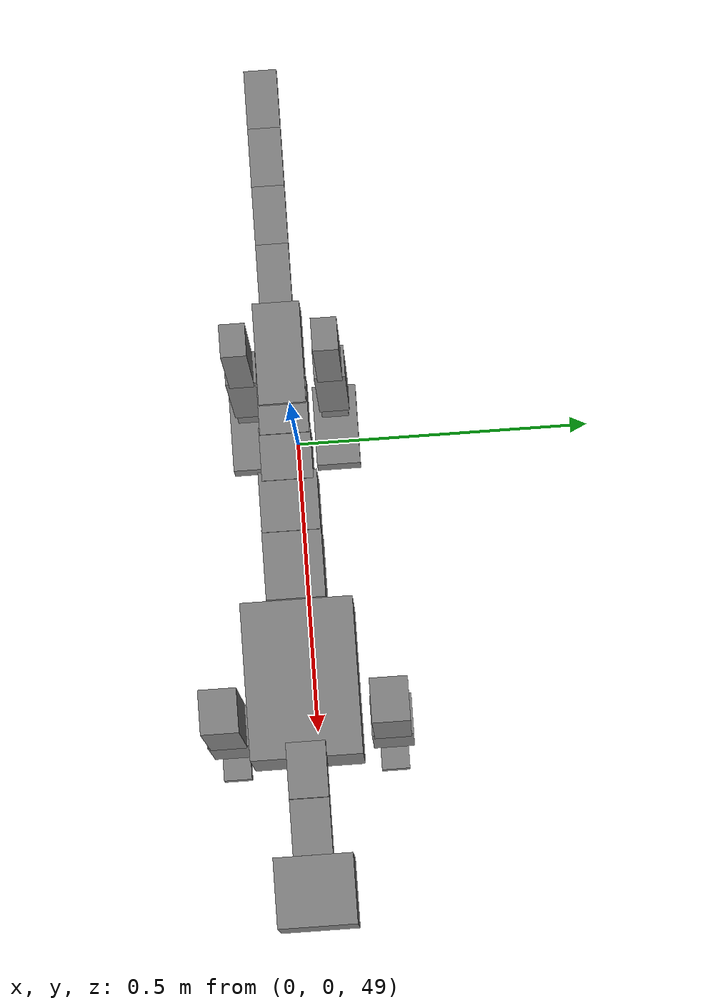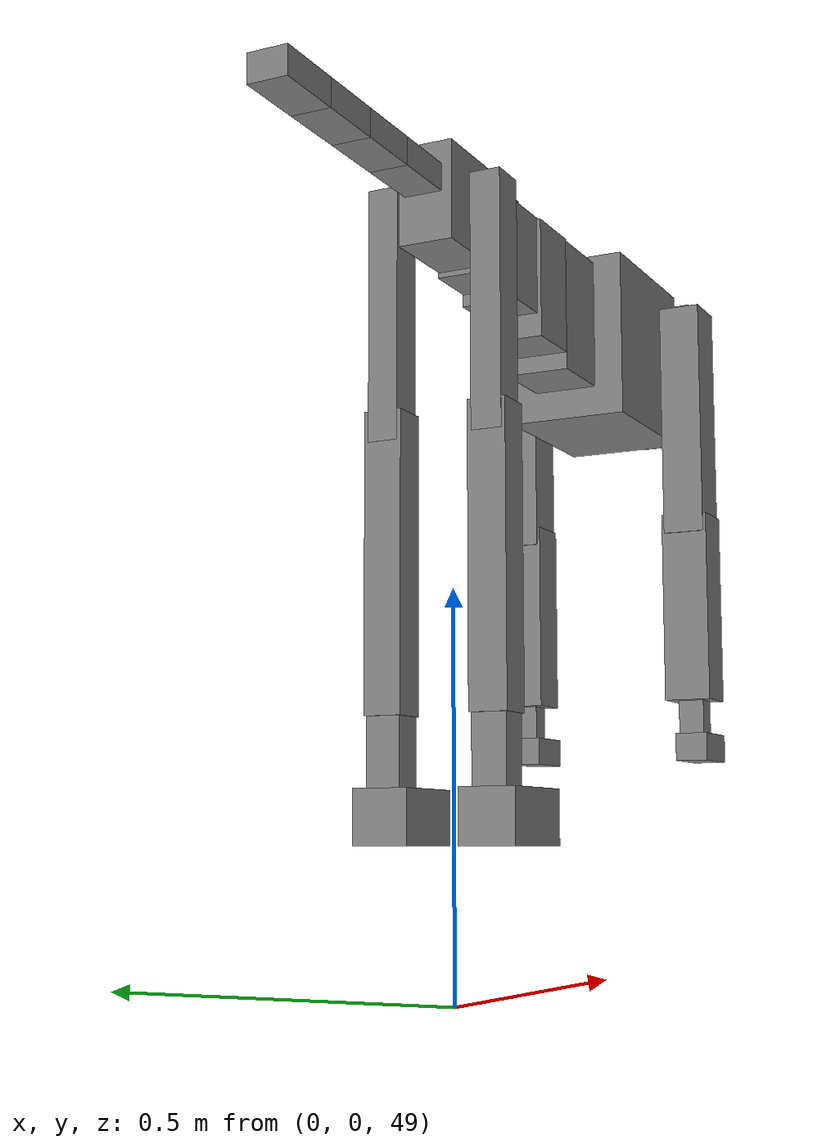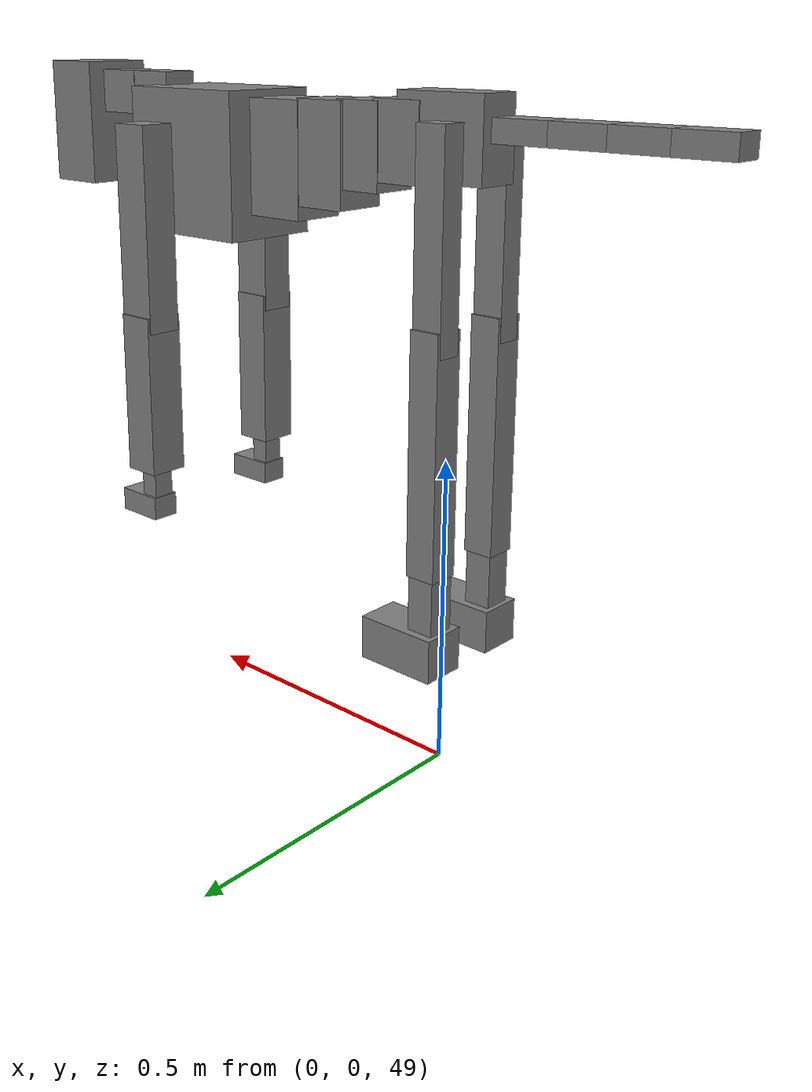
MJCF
<mujoco model="dog">

    <default>
        <joint armature="0.02" stiffness="1" damping="0.2" limited="true"/>
        <geom condim="3" friction="1 0.05 0.05" margin="0.01"/>
        <motor ctrllimited="true" ctrlrange="-1.0 1.0" forcelimited="true" gear="50"/>
    </default>

    <compiler inertiafromgeom="true" angle="radian"/>

    <option timestep="0.016" iterations="50" tolerance="1e-10" solver="Newton" jacobian="dense" cone="pyramidal"/>

    <size nconmax="20000" njmax="60000" nstack="5000000"/>
    <visual>
        <map force="0.1" zfar="30"/>
        <rgba haze="0.15 0.25 0.35 1"/>
        <quality shadowsize="2048"/>
        <global offwidth="800" offheight="800"/>
    </visual>

    <asset>
        <texture type="skybox" builtin="gradient" rgb1="0.3 0.5 0.7" rgb2="0 0 0" width="512" height="512"/>
        <texture name="texplane" type="2d" builtin="checker" rgb1=".2 .3 .4" rgb2=".1 0.15 0.2" width="512" height="512"
                 mark="cross" markrgb=".8 .8 .8"/>
        <texture name="texgeom" type="cube" builtin="flat" mark="cross" width="127" height="1278" rgb1="0.8 0.6 0.4"
                 rgb2="0.8 0.6 0.4" markrgb="1 1 1" random="0.01"/>

        <material name="matplane" reflectance="0.3" texture="texplane" texrepeat="1 1" texuniform="true"/>
        <material name="matgeom" texture="texgeom" texuniform="true" rgba="0.8 0.6 .4 1"/>
    </asset>

    <worldbody>
        <geom name="floor" pos="0 0 0" size="0 0 .25" type="plane" material="matplane" condim="3"/>

        <light directional="false" diffuse=".2 .2 .2" specular="0 0 0" pos="0 0 5" dir="0 0 -1" castshadow="false"/>
        <light mode="targetbodycom" target="torso" directional="false" diffuse=".8 .8 .8" specular="0.3 0.3 0.3"
               pos="0 0 4.0" dir="0 0 -1"/>

        <body name="root" pos="0 0 50">
            <freejoint name="root_1"/>
            <geom type="box" pos="0 0 -0.02" size="0.0774  0.0358  0.063" density="2030"/>

            <body name="spine1" pos="0.054 0 0">
                <joint name="spine1_y" axis="0 1 0" range="0 0.7" limited="true"/>
                <geom type="box" pos="0.02375 0 -0.03" size="0.04375  0.0375  0.05985" density="2030"/>

                <body name="spine2" pos="0.0612 0 0">
                    <joint name="spine2_y" axis="0 1 0" range="-0.15 0.15" limited="true"/>
                    <geom type="box" pos="0.03555  0  -0.04" size="0.04055  0.039  0.06615" density="2030"/>

                    <body name="spine3" pos="0.0730 0 0">
                        <joint name="spine3_y" axis="0 1 0" range="-0.15 0.15" limited="true"/>
                        <geom type="box" pos="0.03555  0  -0.057" size="0.04555  0.0445  0.081" density="2030"/>

                        <body name="spine4" pos="0.0780 0 0">
                            <joint name="spine4_y" axis="0 1 0" range="-0.15 0.15" limited="true"/>
                            <geom type="box" pos="0.05265  0  -0.07" size="0.05265  0.045  0.09135" density="2030"/>

                            <body name="torso" pos="0.1082 0 0">
                                <joint name="torso_y" axis="0 1 0" range="-0.15 0.15" limited="true"/>
                                <geom type="box" pos="0.11925  0  -0.085" size="0.11925  0.085  0.11745"
                                      density="2030"/>

                                <body name="neck1" pos="0.2160  0   0.0180">
                                    <joint name="neck1_y" axis="0 1 0" range="-1.2  -1" limited="true"/>
                                    <geom type="box" pos="0.0423  0  0" size="0.0423  0.03  0.036" density="2325"/>

                                    <body name="neck2" pos="0.0853  0  0">
                                        <joint name="neck2_y" axis="0 1 0" range="0.1  0" limited="true"/>
                                        <geom type="box" pos="0.0423  0  0" size="0.0423  0.03  0.036" density="2325"/>

                                        <body name="head" pos="0.0853  0  0">
                                            <joint name="head_y" axis="0 1 0" range="-0.3  -0.2" limited="true"/>
                                            <geom type="box" pos="0.0531  0  -0.055" size="0.0531  0.06  0.1044"
                                                  density="4030"/>

                                        </body>
                                    </body>
                                </body>

                                <body name="front_shoulder" pos="0.156  0   -0.0480">
                                    <joint name="front_shoulder_y" axis="0 1 0" range="-1 1.5" limited="true"/>
                                    <geom type="box" pos="0 0.13 -0.1421" size="0.0343  0.0293  0.1687" density="1158"/>
                                    <geom type="box" pos="0 -0.13 -0.1421" size="0.0343  0.0293  0.1687"
                                          density="1158"/>

                                    <body name="front_elbow" pos="0  0  -0.2841">
                                        <joint name="front_elbow_y" axis="0 1 0" range="-2 0" limited="true"/>
                                        <geom type="box" pos="0 0.13 -0.1351" size="0.0323  0.0330  0.1351"
                                              density="1081"/>
                                        <geom type="box" pos="0 -0.13 -0.1351" size="0.0323  0.0330  0.1351"
                                              density="1081"/>

                                        <body name="front_wrist" pos="0  0  -0.2702">
                                            <joint name="front_wrist_y" axis="0 1 0" range="-0.2 0" limited="true"/>
                                            <geom type="box" pos="0 0.13 -0.0310" size="0.0162  0.0180  0.0441"
                                                  density="1664"/>
                                            <geom type="box" pos="0 -0.13 -0.0310" size="0.0162  0.0180  0.0441"
                                                  density="1664"/>

                                            <body name="front_finger_end" pos="0  0  -0.0620">
                                                <joint name="front_finger_y" axis="0 1 0" range="-0.4 1"
                                                       limited="true"/>
                                                <geom type="box" pos="0.0230  0.13  -0.0046"
                                                      size="0.0422  0.0230  0.0196" density="1515"/>
                                                <geom type="box" pos="0.0230  -0.13  -0.0046"
                                                      size="0.0422  0.0230  0.0196" density="1515"/>

                                            </body>

                                        </body>
                                    </body>
                                </body>

                            </body>
                        </body>
                    </body>
                </body>
            </body>

            <body name="back_hip" pos="-0.03 0 -0.018">
                <joint name="back_hip_y" axis="0 1 0" range="-1.5 0.3" limited="true"/>
                <geom type="box" pos="0 0.07 -0.1388" size="0.0254  0.0199  0.1616" density="1154"/>
                <geom type="box" pos="0 -0.07 -0.1388" size="0.0254  0.0199  0.1616" density="1154"/>

                <body name="back_knee" pos="0  0  -0.2777">
                    <joint name="back_knee_y" axis="0 1 0" range="0 2.8" limited="true"/>
                    <geom type="box" pos="0 0.07 -0.1723" size="0.0252  0.0248  0.1878" density="1227"/>
                    <geom type="box" pos="0 -0.07 -0.1723" size="0.0252  0.0248  0.1878" density="1227"/>

                    <body name="back_ankle" pos="0  0  -0.3446">
                        <joint name="back_ankle_y" axis="0 1 0" range="-2.2 0" limited="true"/>
                        <geom type="box" pos="0 0.07 -0.0586" size="0.0223  0.0223  0.0698" density="1284"/>
                        <geom type="box" pos="0 -0.07 -0.0586" size="0.0223  0.0223  0.0698" density="1284"/>

                        <body name="back_toe_end" pos="0  0  -0.1172">
                            <joint name="back_toe_y" axis="0 1 0" range="-0.4 1" limited="true"/>
                            <geom type="box" pos="0.0362  0.07  -0.0194" size="0.0664  0.0362  0.0344" density="1515"/>
                            <geom type="box" pos="0.0362  -0.07  -0.0194" size="0.0664  0.0362  0.0344" density="1515"/>

                        </body>
                    </body>
                </body>
            </body>

            <body name="tail1" pos="-0.074 0 -0.006">
                <joint name="tail1_y" axis="0 1 0" range="-0.2 0.2" limited="true"/>
                <geom type="box" pos="-0.0536  0  0" size="0.045  0.025  0.0175" density="1587"/>

                <body name="tail2" pos="-0.09 0 0">
                    <joint name="tail2_y" axis="0 1 0" range="-0.2 0.2" limited="true"/>
                    <geom type="box" pos="-0.0536  0  0" size="0.045  0.025  0.0175" density="1587"/>

                    <body name="tail3" pos="-0.09 0 0">
                        <joint name="tail3_y" axis="0 1 0" range="-0.2 0.2" limited="true"/>
                        <geom type="box" pos="-0.0536  0  0" size="0.045  0.025  0.0175" density="1587"/>

                        <body name="tail4" pos="-0.09 0 0">
                            <joint name="tail4_y" axis="0 1 0" range="-0.2 0.2" limited="true"/>
                            <geom type="box" pos="-0.0536  0  0" size="0.045  0.025  0.0175" density="1587"/>

                        </body>
                    </body>
                </body>
            </body>
        </body>
    </worldbody>

    <actuator>
        <motor joint="spine1_y" forcerange="-150 150     "/>
        <motor joint="spine2_y" forcerange="-150 150     "/>
        <motor joint="spine3_y" forcerange="-150 150     "/>
        <motor joint="spine4_y" forcerange="-150 150     "/>
        <motor joint="torso_y" forcerange="-150 150     "/>
        <motor joint="neck1_y" forcerange="-100 100       "/>
        <motor joint="neck2_y" forcerange="-100 100       "/>
        <motor joint="head_y" forcerange="-150 150       "/>
        <motor joint="front_shoulder_y" forcerange="-149.63 145.56"/>
        <motor joint="front_elbow_y" forcerange="-176.82 163.23"/>
        <motor joint="front_wrist_y" forcerange="-58.85 84.89"/>
        <motor joint="front_finger_y" forcerange="-30.56 52.14"/>
        <motor joint="back_hip_y" forcerange="-261.48 204.47"/>
        <motor joint="back_knee_y" forcerange="-326.82 233.77"/>
        <motor joint="back_angle_y" forcerange="-148.02 108.78"/>
        <motor joint="back_toe_y" forcerange="-127.57 82.22"/>
        <motor joint="tail1_y" forcerange="-50 50     "/>
        <motor joint="tail2_y" forcerange="-50 50     "/>
        <motor joint="tail3_y" forcerange="-50 50     "/>
        <motor joint="tail4_y" forcerange="-50 50     "/>
    </actuator>
</mujoco>
